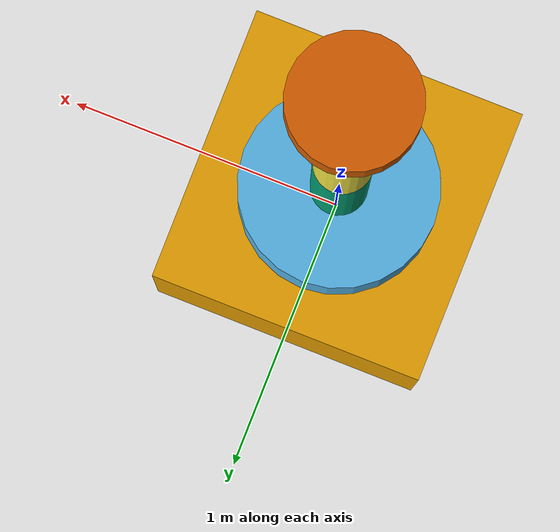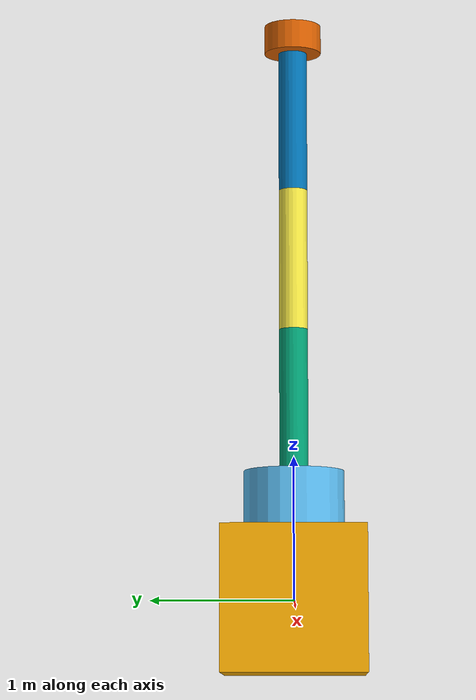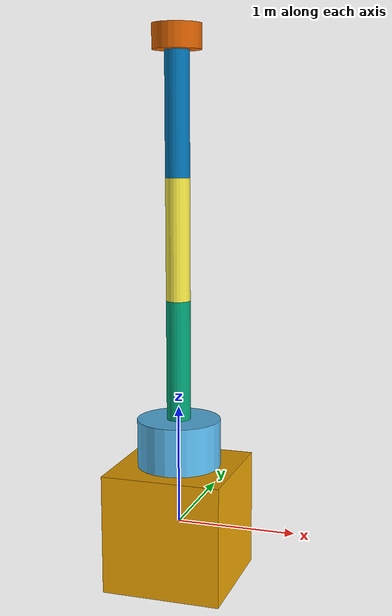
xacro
<?xml version='1.0' ?>

<robot name="arm" xmlns:xacro="http://www.ros.org/wiki/xacro">

	<xacro:include filename = "$(find arm_a)/urdf/link_joint.xacro" />
	<xacro:include filename = "$(find arm_a)/urdf/robot_parameters.xacro" />

	<xacro:m_link_box 		name = "${l00}"
							origin_rpy = "0 0 0"
							origin_xyz = "0 0 0"
							mass="1024"
              				ixx="170.667" ixy="0" ixz="0"
              				iyy="170.667" iyz="0"
              				izz="170.667"
							size = "1 1 1" />

	<xacro:m_joint 			name = "${l00}_${l01}"
							type = "revolute"
							axis_xyz = "0 0 1"
							origin_rpy = "0 0 0"
							origin_xyz = "0 0 0.5"
							parent = "${l00}"
							child = "${l01}"
							limit_e="1000" limit_l="-3.14" limit_u="3.14" limit_v="0.5"/>

    <xacro:m_link_cylinder 	name = "${l01}"
    						origin_rpy = "0 0 0"
    						origin_xyz = "0 0 0.2"
    						mass="10"
              				ixx="1" ixy="0" ixz="0"
              				iyy="1" iyz="0"
              				izz="0.651"
    						radius = "0.35"
    						length="0.4" />

    <xacro:m_joint 			name = "${l01}_${l02}"
    						type = "revolute"
    						axis_xyz = "0 1 0"
    						origin_rpy = "0 0 0"
    						origin_xyz = "0 0 0.4"
    						parent = "${l01}"
    						child = "${l02}"
    						limit_e="1000" limit_l="-0.75" limit_u="0.75" limit_v="0.5"/>

    <xacro:m_link_cylinder 	name = "${l02}"
    						origin_rpy = "0 0 0"
    						origin_xyz = "0 0 0.5"
    						mass="12.906"
              				ixx="1" ixy="0" ixz="0"
              				iyy="1.679" iyz="0"
              				izz="0.651"
    						radius = "0.10"
    						length="1" />

    <xacro:m_joint 			name = "${l02}_${l03}"
    						type = "revolute"
    						axis_xyz = "0 1 0"
    						origin_rpy = "0 0 0"
    						origin_xyz = "0 0 1"
    						parent = "${l02}"
    						child = "${l03}"
    						limit_e="1000" limit_l="-0.75" limit_u="1.5" limit_v="0.5"/>

	<xacro:m_link_cylinder 	name = "${l03}"
							origin_rpy = "0 0 0"
							origin_xyz = "0 0 0.5"
							mass="12.906"
              				ixx="1.679" ixy="0" ixz="0"
             		 		iyy="1.679" iyz="0"
              				izz="0.651"
							radius = "0.10"
							length="1" />

    <xacro:m_joint 			name = "${l03}_${l04}"
    						type = "revolute"
    						axis_xyz = "0 1 0"
    						origin_rpy = "0 0 0"
    						origin_xyz = "0 0 1"
    						parent = "${l03}"
    						child = "${l04}"
    						limit_e="1000" limit_l="0" limit_u="2.5" limit_v="0.5"/>

	<xacro:m_link_cylinder 	name = "${l04}"
							origin_rpy = "0 0 0"
							origin_xyz = "0 0 0.5"
							mass="12.906"
              				ixx="1.679" ixy="0" ixz="0"
              				iyy="1.679" iyz="0"
              				izz="0.651"
							radius = "0.10"
							length="1" />

    <xacro:m_joint 			name = "${l04}_${l05}"
    						type = "revolute"
    						axis_xyz = "0 0 1"
    						origin_rpy = "0 0 0"
    						origin_xyz = "0 0 1"
    						parent = "${l04}"
    						child = "${l05}"
    						limit_e="1000" limit_l="-3.14" limit_u="3.14" limit_v="0.5"/>

	<xacro:m_link_cylinder 	name = "${l05}"
							origin_rpy = "0 0 0"
							origin_xyz = "0 0 0.1"
							mass="2.056"
              				ixx="0.179" ixy="0" ixz="0"
              				iyy="0.179" iyz="0"
              				izz="0.204"
							radius = "0.2"
							length="0.2" />

 <gazebo>
 	<plugin name = "gazebo_ros_control" filename = "libgazebo_ros_control.so" />
 </gazebo>
</robot>

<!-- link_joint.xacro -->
<robot name = "arm" xmlns:xacro="http://www.ros.org/wiki/xacro">

	<xacro:macro name = "m_joint" params = "name type axis_xyz origin_rpy origin_xyz parent child limit_e limit_l limit_u limit_v">
		<joint name="${name}" type="${type}">
	      <axis xyz="${axis_xyz}" />
	      <limit effort="${limit_e}" lower="${limit_l}" upper="${limit_u}" velocity="${limit_v}" />
	      <origin rpy="${origin_rpy}" xyz="${origin_xyz}" />
	      <parent link="${parent}" />
	      <child link="${child}" />
    	</joint>
      <transmission name="trans_${name}">
      <type>transmission_interface/SimpleTransmission</type>
      <joint name="${name}">
        <hardwareInterface>hardware_interface/EffortJointInterface</hardwareInterface>
      </joint>
      <actuator name="motor_${name}">
        <hardwareInterface>hardware_interface/EffortJointInterface</hardwareInterface>
        <mechanicalReduction>1</mechanicalReduction>
      </actuator>
    </transmission>
  </xacro:macro>

	<xacro:macro name="m_link_cylinder" params="name origin_xyz origin_rpy radius length mass ixx ixy ixz iyy iyz izz">
    <link name="${name}">
      <inertial>
        <mass value="${mass}" />
        <origin rpy="${origin_rpy}" xyz="${origin_xyz}" />
        <inertia ixx="${ixx}" ixy="${ixy}" ixz="${ixz}" iyy="${iyy}" iyz="${iyz}" izz="${izz}" />
      </inertial>
      <collision>
        <origin rpy="${origin_rpy}" xyz="${origin_xyz}" />
        <geometry>
          <cylinder radius="${radius}" length="${length}" />
        </geometry>
      </collision>
      <visual>
        <origin rpy="${origin_rpy}" xyz="${origin_xyz}" />
        <geometry>
          <cylinder radius="${radius}" length="${length}" />
        </geometry>
      </visual>
    </link>
  </xacro:macro>

  <xacro:macro name="m_link_box" params="name origin_xyz origin_rpy size mass ixx ixy ixz iyy iyz izz">
    <link name="${name}">
      <inertial>
        <mass value="${mass}" />
        <origin rpy="${origin_rpy}" xyz="${origin_xyz}" />
        <inertia ixx="${ixx}" ixy="${ixy}" ixz="${ixz}" iyy="${iyy}" iyz="${iyz}" izz="${izz}" />
      </inertial>
      <collision>
        <origin rpy="${origin_rpy}" xyz="${origin_xyz}" />
        <geometry>
          <box size="${size}" />
        </geometry>
      </collision>
      <visual>
        <origin rpy="${origin_rpy}" xyz="${origin_xyz}" />
        <geometry>
          <box size="${size}" />
        </geometry>
      </visual>
    </link>
  </xacro:macro>

  <xacro:macro name="m_link_mesh" params="name origin_xyz origin_rpy meshfile meshscale mass ixx ixy ixz iyy iyz izz">
    <link name="${name}">
      <inertial>
        <mass value="${mass}" />
        <origin rpy="${origin_rpy}" xyz="${origin_xyz}" />
        <inertia ixx="${ixx}" ixy="${ixy}" ixz="${ixz}" iyy="${iyy}" iyz="${iyz}" izz="${izz}" />
      </inertial>
      <collision>
        <origin rpy="${origin_rpy}" xyz="${origin_xyz}" />
        <geometry>
          <mesh filename="${meshfile}" scale="${meshscale}"/>
        </geometry>
      </collision>
      <visual>
        <origin rpy="${origin_rpy}" xyz="${origin_xyz}" />
        <geometry>
          <mesh filename="${meshfile}" scale="${meshscale}"/>
        </geometry>
        <material name="light_black"/>
      </visual>
    </link>
  </xacro:macro>

  <!-- Testing Depth Camera -->
  <xacro:macro name = "m_link_camera" params="name origin_xyz origin_rpy size mass ixx ixy ixz iyy iyz izz">
    <link name="${name}">
      <inertial>
        <mass value="${mass}" />
        <origin rpy="${origin_rpy}" xyz="${origin_xyz}" />
        <inertia ixx="${ixx}" ixy="${ixy}" ixz="${ixz}" iyy="${iyy}" iyz="${iyz}" izz="${izz}" />
      </inertial>
      <collision>
        <origin rpy="${origin_rpy}" xyz="${origin_xyz}" />
        <geometry>
          <box size="${size}" />
        </geometry>
      </collision>
      <visual>
        <origin rpy="${origin_rpy}" xyz="${origin_xyz}" />
        <geometry>
          <box size="${size}" />
        </geometry>
      </visual>
    </link>
  </xacro:macro>

</robot>

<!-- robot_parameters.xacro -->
<robot xmlns:xacro="http://www.ros.org/wiki/xacro">
  <xacro:property name="l00" value="base_link" />
  <xacro:property name="l01" value="link_1" />
  <xacro:property name="l02" value="link_2" />
  <xacro:property name="l03" value="link_3" />
  <xacro:property name="l04" value="link_4" />
  <xacro:property name="l05" value="link_5" />
  <xacro:property name="l06" value="link_6" />
  <xacro:property name="l07" value="link_7" />
</robot>
